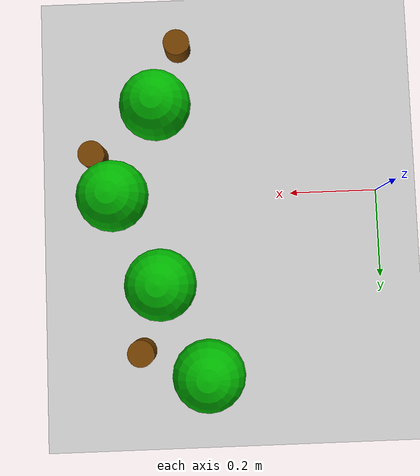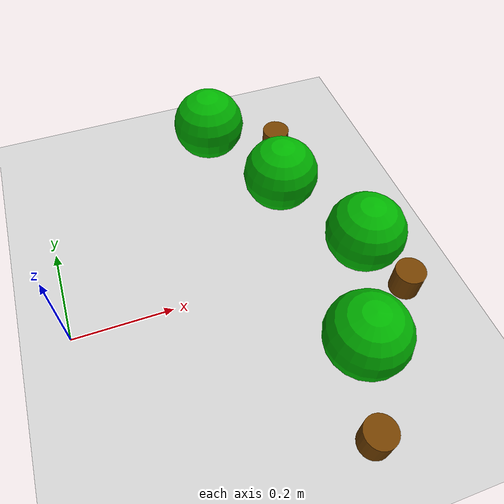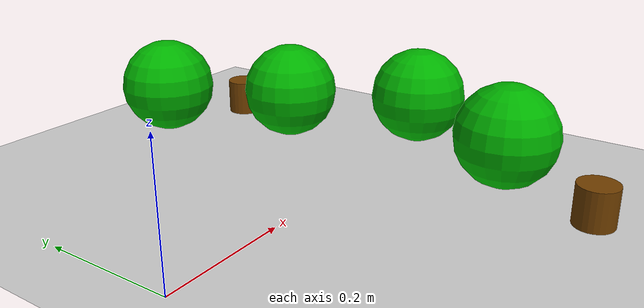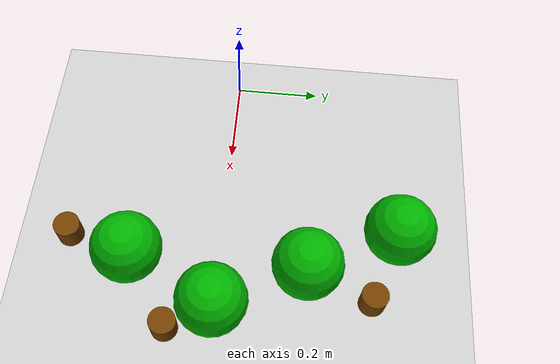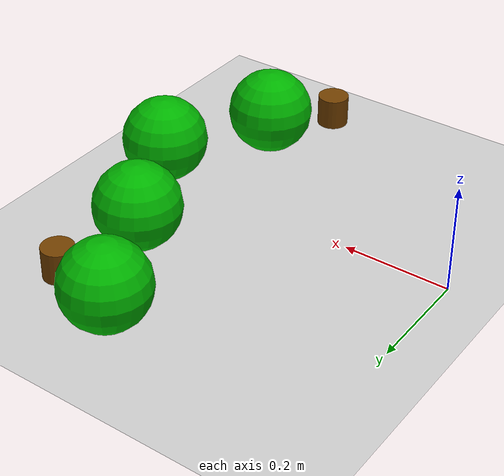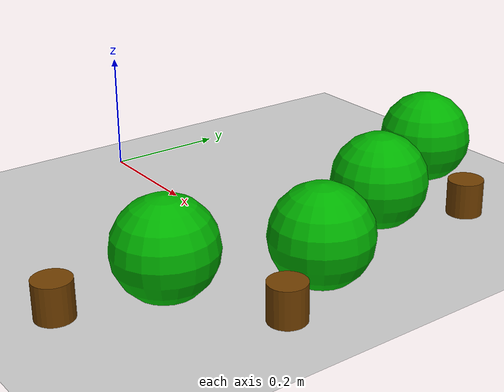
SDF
<sdf version='1.10'>
  <world name='empty'>
    <physics name='1ms' type='ignored'>
      <max_step_size>0.001</max_step_size>
      <real_time_factor>1</real_time_factor>
      <real_time_update_rate>1000</real_time_update_rate>
    </physics>
    <plugin name='gz::sim::systems::Physics' filename='gz-sim-physics-system'/>
    <plugin name='gz::sim::systems::UserCommands' filename='gz-sim-user-commands-system'/>
    <plugin name='gz::sim::systems::SceneBroadcaster' filename='gz-sim-scene-broadcaster-system'/>
    <plugin name='gz::sim::systems::Contact' filename='gz-sim-contact-system'/>
    <plugin name='gz::sim::systems::Sensors' filename='gz-sim-sensors-system'>
      <render_engine>ogre2</render_engine>
    </plugin>
    <gravity>0 0 -9.8000000000000007</gravity>
    <magnetic_field>5.5644999999999998e-06 2.2875799999999999e-05 -4.2388400000000002e-05</magnetic_field>
    <atmosphere type='adiabatic'/>
    <scene>
      <ambient>0.400000006 0.400000006 0.400000006 1</ambient>
      <background>0.699999988 0.699999988 0.699999988 1</background>
      <shadows>true</shadows>
    </scene>

    <model name='ground_plane'>
      <static>true</static>
      <link name='link'>
        <collision name='collision'>
          <geometry>
            <plane>
              <normal>0 0 1</normal>
              <size>100 100</size>
            </plane>
          </geometry>
          <surface>
            <friction><ode/></friction>
            <bounce/>
            <contact/>
          </surface>
        </collision>
        <visual name='visual'>
          <geometry>
            <plane>
              <normal>0 0 1</normal>
              <size>100 100</size>
            </plane>
          </geometry>
          <material>
            <ambient>0.800000012 0.800000012 0.800000012 1</ambient>
            <diffuse>0.800000012 0.800000012 0.800000012 1</diffuse>
            <specular>0.800000012 0.800000012 0.800000012 1</specular>
          </material>
        </visual>
        <pose>0 0 0 0 0 0</pose>
        <inertial>
          <pose>0 0 0 0 0 0</pose>
          <mass>1</mass>
          <inertia>
            <ixx>1</ixx><ixy>0</ixy><ixz>0</ixz>
            <iyy>1</iyy><iyz>0</iyz><izz>1</izz>
          </inertia>
        </inertial>
        <enable_wind>false</enable_wind>
      </link>
      <pose>0 0 0 0 0 0</pose>
      <self_collide>false</self_collide>
    </model>

    <light name='sun' type='directional'>
      <pose>0 0 10 0 0 0</pose>
      <cast_shadows>true</cast_shadows>
      <intensity>1</intensity>
      <direction>-0.5 0.1 -0.9</direction>
      <diffuse>0.800000012 0.800000012 0.800000012 1</diffuse>
      <specular>0.200000003 0.200000003 0.200000003 1</specular>
      <attenuation>
        <range>1000</range>
        <linear>0.01</linear>
        <constant>0.9</constant>
        <quadratic>0.001</quadratic>
      </attenuation>
      <spot>
        <inner_angle>0</inner_angle>
        <outer_angle>0</outer_angle>
        <falloff>0</falloff>
      </spot>
    </light>

    <!-- ========== WATERMELONS (green spheres, r=0.08m) ========== -->
    <model name='watermelon_1'>
      <static>true</static>
      <pose>0.5 0.2 0.08 0 0 0</pose>
      <link name='link'>
        <visual name='visual'>
          <geometry><sphere><radius>0.08</radius></sphere></geometry>
          <material>
            <ambient>0.0 0.6 0.0 1</ambient>
            <diffuse>0.0 0.7 0.0 1</diffuse>
            <specular>0.1 0.3 0.1 1</specular>
          </material>
        </visual>
        <collision name='collision'>
          <geometry><sphere><radius>0.08</radius></sphere></geometry>
        </collision>
      </link>
    </model>

    <model name='watermelon_2'>
      <static>true</static>
      <pose>0.5 -0.2 0.08 0 0 0</pose>
      <link name='link'>
        <visual name='visual'>
          <geometry><sphere><radius>0.08</radius></sphere></geometry>
          <material>
            <ambient>0.0 0.6 0.0 1</ambient>
            <diffuse>0.0 0.7 0.0 1</diffuse>
            <specular>0.1 0.3 0.1 1</specular>
          </material>
        </visual>
        <collision name='collision'>
          <geometry><sphere><radius>0.08</radius></sphere></geometry>
        </collision>
      </link>
    </model>

    <model name='watermelon_3'>
      <static>true</static>
      <pose>0.6 0.0 0.08 0 0 0</pose>
      <link name='link'>
        <visual name='visual'>
          <geometry><sphere><radius>0.08</radius></sphere></geometry>
          <material>
            <ambient>0.0 0.6 0.0 1</ambient>
            <diffuse>0.0 0.7 0.0 1</diffuse>
            <specular>0.1 0.3 0.1 1</specular>
          </material>
        </visual>
        <collision name='collision'>
          <geometry><sphere><radius>0.08</radius></sphere></geometry>
        </collision>
      </link>
    </model>

    <model name='watermelon_4'>
      <static>true</static>
      <pose>0.4 0.4 0.08 0 0 0</pose>
      <link name='link'>
        <visual name='visual'>
          <geometry><sphere><radius>0.08</radius></sphere></geometry>
          <material>
            <ambient>0.0 0.6 0.0 1</ambient>
            <diffuse>0.0 0.7 0.0 1</diffuse>
            <specular>0.1 0.3 0.1 1</specular>
          </material>
        </visual>
        <collision name='collision'>
          <geometry><sphere><radius>0.08</radius></sphere></geometry>
        </collision>
      </link>
    </model>

    <!-- ========== WEEDS (brown cylinders, r=0.03m, h=0.06m) ========== -->
    <model name='weed_1'>
      <static>true</static>
      <pose>0.55 0.35 0.03 0 0 0</pose>
      <link name='link'>
        <visual name='visual'>
          <geometry><cylinder><radius>0.03</radius><length>0.06</length></cylinder></geometry>
          <material>
            <ambient>0.4 0.22 0.0 1</ambient>
            <diffuse>0.45 0.25 0.0 1</diffuse>
            <specular>0.05 0.05 0.0 1</specular>
          </material>
        </visual>
        <collision name='collision'>
          <geometry><cylinder><radius>0.03</radius><length>0.06</length></cylinder></geometry>
        </collision>
      </link>
    </model>

    <model name='weed_2'>
      <static>true</static>
      <pose>0.45 -0.35 0.03 0 0 0</pose>
      <link name='link'>
        <visual name='visual'>
          <geometry><cylinder><radius>0.03</radius><length>0.06</length></cylinder></geometry>
          <material>
            <ambient>0.4 0.22 0.0 1</ambient>
            <diffuse>0.45 0.25 0.0 1</diffuse>
            <specular>0.05 0.05 0.0 1</specular>
          </material>
        </visual>
        <collision name='collision'>
          <geometry><cylinder><radius>0.03</radius><length>0.06</length></cylinder></geometry>
        </collision>
      </link>
    </model>

    <model name='weed_3'>
      <static>true</static>
      <pose>0.65 -0.1 0.03 0 0 0</pose>
      <link name='link'>
        <visual name='visual'>
          <geometry><cylinder><radius>0.03</radius><length>0.06</length></cylinder></geometry>
          <material>
            <ambient>0.4 0.22 0.0 1</ambient>
            <diffuse>0.45 0.25 0.0 1</diffuse>
            <specular>0.05 0.05 0.0 1</specular>
          </material>
        </visual>
        <collision name='collision'>
          <geometry><cylinder><radius>0.03</radius><length>0.06</length></cylinder></geometry>
        </collision>
      </link>
    </model>

  </world>
</sdf>
